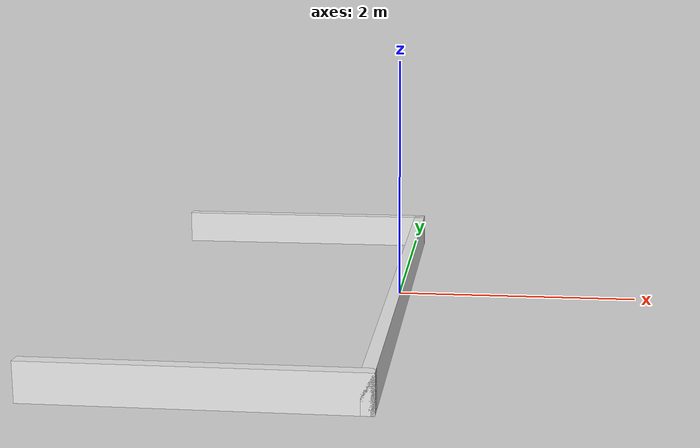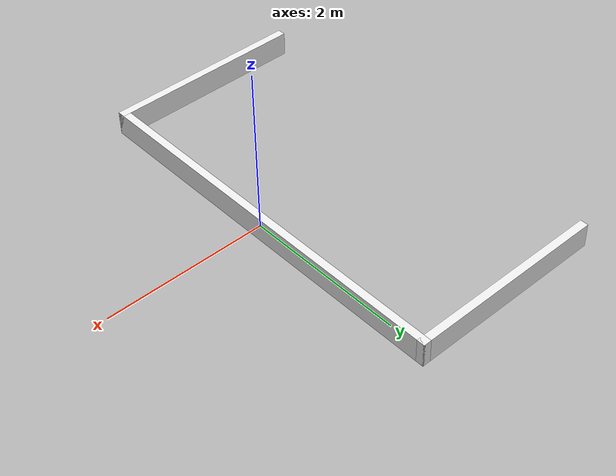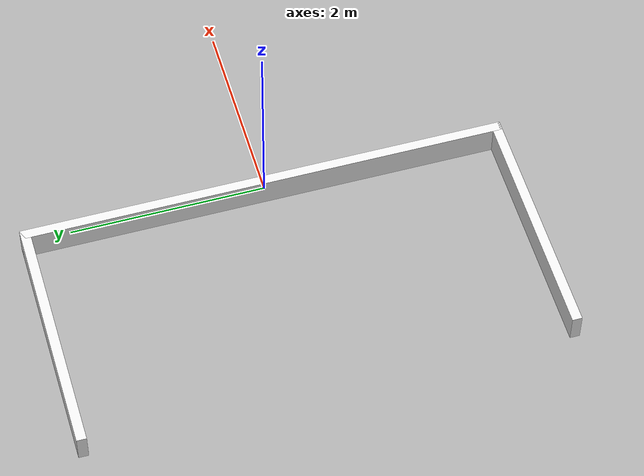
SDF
<?xml version="1.0" encoding="UTF-8"?>
<!-- |    This document was autogenerated by xacro4sdf from model.sdf.xmacro           | -->
<!-- |    EDITING THIS FILE BY HAND IS NOT RECOMMENDED                                 | -->
<sdf version="1.7">
	<!--creo una lista di proprietà utili-->
	<model name="parcheggio">
		<link name="link_1">
			<pose> -1.2 -2.45 0 0 -0 0</pose>
			<gravity>0</gravity>
			<self_collide>0</self_collide>
			<kinematic>0</kinematic>
			<enable_wind>0</enable_wind>
			<visual name="visual">
				<pose>0 0 0 0 -0 0</pose>
				<geometry>
					<box>
						<size>2.5 0.1 0.305</size>
					</box>
				</geometry>
				<material>
					<specular>0.1 0.1 0.1 1</specular>
					<diffuse>0 0 0 1</diffuse>
					<lighting>0</lighting>
					<script>
						<uri>file://media/materials/scripts/Gazebo.material</uri>
						<name>Gazebo/White</name>
					</script>
					<shader type="pixel">
						<normal_map>default</normal_map>
					</shader>
					<emissive>0 0 0 1</emissive>
					<ambient>0 0 0 1</ambient>
				</material>
				<transparency>0</transparency>
				<cast_shadows>1</cast_shadows>
			</visual>
		</link>
		<static>0</static>
		<allow_auto_disable>1</allow_auto_disable>
		<link name="link_2">
			<pose>0 0 0 0 -0 0</pose>
			<gravity>0</gravity>
			<self_collide>0</self_collide>
			<kinematic>0</kinematic>
			<enable_wind>0</enable_wind>
			<visual name="visual">
				<pose>0 0 0 0 -0 0</pose>
				<geometry>
					<box>
						<size>0.1 5.0 0.305</size>
					</box>
				</geometry>
				<material>
					<specular>0.1 0.1 0.1 1</specular>
					<diffuse>0 0 0 1</diffuse>
					<lighting>0</lighting>
					<script>
						<uri>file://media/materials/scripts/Gazebo.material</uri>
						<name>Gazebo/White</name>
					</script>
					<shader type="pixel">
						<normal_map>default</normal_map>
					</shader>
					<emissive>0 0 0 1</emissive>
					<ambient>0 0 0 1</ambient>
				</material>
				<transparency>0</transparency>
				<cast_shadows>1</cast_shadows>
			</visual>
		</link>
		<static>0</static>
		<allow_auto_disable>1</allow_auto_disable>
		<link name="link_3">
			<pose>-1.2 2.45 0 0 -0 0</pose>
			<gravity>0</gravity>
			<self_collide>0</self_collide>
			<kinematic>0</kinematic>
			<enable_wind>0</enable_wind>
			<visual name="visual">
				<pose>0 0 0 0 -0 0</pose>
				<geometry>
					<box>
						<size>2.5 0.1 0.305</size>
					</box>
				</geometry>
				<material>
					<specular>0.1 0.1 0.1 1</specular>
					<diffuse>0 0 0 1</diffuse>
					<lighting>0</lighting>
					<script>
						<uri>file://media/materials/scripts/Gazebo.material</uri>
						<name>Gazebo/White</name>
					</script>
					<shader type="pixel">
						<normal_map>default</normal_map>
					</shader>
					<emissive>0 0 0 1</emissive>
					<ambient>0 0 0 1</ambient>
				</material>
				<transparency>0</transparency>
				<cast_shadows>1</cast_shadows>
			</visual>
		</link>
		<static>0</static>
		<allow_auto_disable>1</allow_auto_disable>
	</model>
</sdf>
